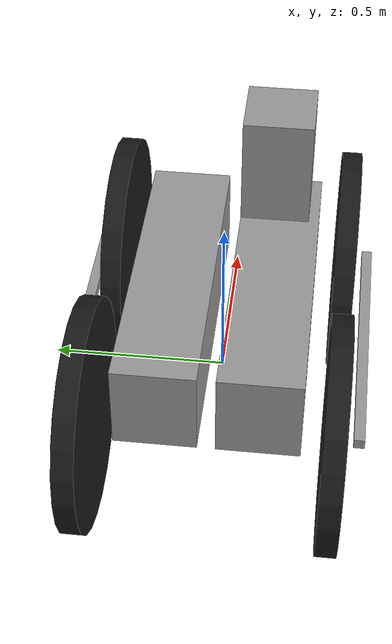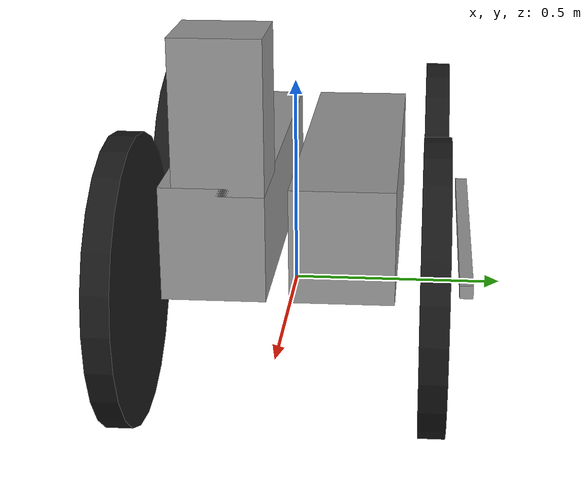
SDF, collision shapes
<?xml version="1.0"?>
<sdf version="1.6">
  <model name="coro_mike_sensor_config_1">
    <pose>0 0 0.1275 0 0 0</pose>
    <enable_wind>1</enable_wind>

    <link name="base_link">
      <inertial>
        <pose>0 -0.14 0.11 0 0 0</pose>
        <mass>27.85</mass>
        <inertia>
          <ixx>0.274</ixx>
          <iyy>1.961</iyy>
          <izz>1.989</izz>
        </inertia>
      </inertial>

      <collision name="chassis_collision">
        <pose>0 -0.14 0.11 0 0 0</pose>
        <geometry>
          <box>
            <size>0.89 0.23 0.255</size>
          </box>
        </geometry>
      </collision>
      <collision name="chassis_collision2">
        <pose>0 -0.41 0 0 0 0</pose>
        <geometry>
          <box>
            <size>0.8 0.03 0.03</size>
          </box>
        </geometry>
      </collision>
      <collision name="tower_collision">
        <pose>0.345 -0.125 0.39 0 0 0</pose>
        <geometry>
          <box>
            <size>0.2 0.2 0.34</size>
          </box>
        </geometry>
      </collision>

      <visual name="chassis_main_visual">
        <pose>0 -0.14 0.11 0 0 0</pose>
        <geometry>
          <box>
            <size>0.89 0.23 0.255</size>
          </box>
        </geometry>
        <material>
          <ambient>0.6 0.6 0.6 1.0</ambient>
          <diffuse>0.6 0.6 0.6 1.0</diffuse>
        </material>
      </visual>

      <visual name="chassis_main_outside_visual1">
        <pose>0 -0.41 0 0 0 0</pose>
        <geometry>
          <box>
            <size>0.8 0.03 0.03</size>
          </box>
        </geometry>
        <material>
          <ambient>0.6 0.6 0.6 1.0</ambient>
          <diffuse>0.6 0.6 0.6 1.0</diffuse>
        </material>
      </visual>
      <visual name="chassis_main_outside_visual2">
        <pose>0 -0.33 0 0 0 0</pose>
        <geometry>
          <box>
            <size>0.06 0.16 0.03</size>
          </box>
        </geometry>
        <material>
          <ambient>0.6 0.6 0.6 1.0</ambient>
          <diffuse>0.6 0.6 0.6 1.0</diffuse>
        </material>
      </visual>

      <visual name="chassis_joint_visual">
        <pose>0 0 0.04 1.5707963267948966 0 0</pose>
        <geometry>
          <cylinder>
            <length>0.05</length>
            <radius>0.05</radius>
          </cylinder>
        </geometry>
        <material>
          <ambient>0.0 0.0 0.0 1.0</ambient>
          <diffuse>0.0 0.0 0.0 1.0</diffuse>
        </material>
      </visual>

      <visual name="plate1_visual">
        <pose>0.345 -0.125 0.54 0 0 0</pose>
        <geometry>
          <box>
            <size>0.2 0.2 0.005</size>
          </box>
        </geometry>
        <material>
          <ambient>0.8 0.8 0.8 1</ambient>
          <diffuse>0.8 0.8 0.8 1</diffuse>
        </material>
      </visual>
      <visual name="plate2_visual">
        <pose>0.345 -0.125 0.43 0 0 0</pose>
        <geometry>
          <box>
            <size>0.2 0.2 0.005</size>
          </box>
        </geometry>
        <material>
          <ambient>0.8 0.8 0.8 1</ambient>
          <diffuse>0.8 0.8 0.8 1</diffuse>
        </material>
      </visual>
      <visual name="plate3_visual_was35_11_29">
        <pose>0.345 -0.125 0.24 0 0 0</pose>
        <geometry>
          <box>
            <size>0.2 0.2 0.005</size>
          </box>
        </geometry>
        <material>
          <ambient>0.8 0.8 0.8 1</ambient>
          <diffuse>0.8 0.8 0.8 1</diffuse>
        </material>
      </visual>

      <visual name="beam1_visual">
        <pose>0.436 -0.034 0.39 0 0 0</pose>
        <geometry>
          <box>
            <size>0.02 0.02 0.3</size>
          </box>
        </geometry>
        <material>
          <ambient>0.8 0.8 0.8 1</ambient>
          <diffuse>0.8 0.8 0.8 1</diffuse>
        </material>
      </visual>
      <visual name="beam2_visual">
        <pose>0.436 -0.216 0.39 0 0 0</pose>
        <geometry>
          <box>
            <size>0.02 0.02 0.3</size>
          </box>
        </geometry>
        <material>
          <ambient>0.8 0.8 0.8 1</ambient>
          <diffuse>0.8 0.8 0.8 1</diffuse>
        </material>
      </visual>
      <visual name="beam3_visual">
        <pose>0.254 -0.034 0.39 0 0 0</pose>
        <geometry>
          <box>
            <size>0.02 0.02 0.3</size>
          </box>
        </geometry>
        <material>
          <ambient>0.8 0.8 0.8 1</ambient>
          <diffuse>0.8 0.8 0.8 1</diffuse>
        </material>
      </visual>
      <visual name="beam4_visual">
        <pose>0.254 -0.216 0.39 0 0 0</pose>
        <geometry>
          <box>
            <size>0.02 0.02 0.3</size>
          </box>
        </geometry>
        <material>
          <ambient>0.8 0.8 0.8 1</ambient>
          <diffuse>0.8 0.8 0.8 1</diffuse>
        </material>
      </visual>

      <visual name="emergency_stop_bottom_visual">
        <pose>0.2 -0.15 0.245 0 0 0</pose>
        <geometry>
          <cylinder>
            <length>0.015</length>
            <radius>0.015</radius>
          </cylinder>
        </geometry>
        <material>
          <ambient>0.7059 0.7059 0.7059 1.0</ambient>
          <diffuse>0.7059 0.7059 0.7059 1.0</diffuse>
        </material>
      </visual>
      <visual name="emergency_stop_top_visual">
        <pose>0.2 -0.15 0.255 0 0 0</pose>
        <geometry>
          <cylinder>
            <length>0.005</length>
            <radius>0.02</radius>
          </cylinder>
        </geometry>
        <material>
          <ambient>1.0 0.0 0.0 1.0</ambient>
          <diffuse>1.0 0.0 0.0 1.0</diffuse>
        </material>
      </visual>

      <visual name="d435i_realsense_camera_visual">
        <pose>0.405 -0.125 0.513 0 0.46 0</pose>
        <geometry>
          <mesh>
            <scale>0.001 0.001 0.001</scale>
            <uri>meshes/realsense_d435.dae</uri>
          </mesh>
        </geometry>
      </visual>

      <visual name="vlp16_visual1">
        <pose>0.345 -0.125 0.432 0 -0 0</pose>
        <geometry>
          <mesh>
            <scale>1 1 1</scale>
            <uri>meshes/VLP16_base_1.dae</uri>
          </mesh>
        </geometry>
      </visual>
      <visual name="vlp_visual2">
        <pose>0.345 -0.125 0.432 0 -0 0</pose>
        <geometry>
          <mesh>
            <scale>1 1 1</scale>
            <uri>meshes/VLP16_base_2.dae</uri>
          </mesh>
        </geometry>
      </visual>
      <visual name="vlp_visual3">
        <pose>0.345 -0.125 0.432 0 -0 0</pose>
        <geometry>
          <mesh>
            <scale>1 1 1</scale>
            <uri>meshes/VLP16_scan.dae</uri>
          </mesh>
        </geometry>
      </visual>

      <visual name="camera_front_visual">
        <pose>0.435 -0.065 0.525 0 0 0</pose>
        <geometry>
          <box>
            <size>0.01 0.03 0.03</size>
          </box>
        </geometry>
        <material>
          <ambient>0.0 0.0 0.0 1.0</ambient>
          <diffuse>0.0 0.0 0.0 1.0</diffuse>
        </material>
      </visual>
      <visual name="camera_lens_front_visual">
        <pose>0.445 -0.065 0.525 0 1.5707963267948966 0</pose>
        <geometry>
          <cylinder>
            <length>0.011</length>
            <radius>0.005</radius>
          </cylinder>
        </geometry>
        <material>
          <ambient>0.0 0.0 0.0 1.0</ambient>
          <diffuse>0.0 0.0 0.0 1.0</diffuse>
        </material>
      </visual>

      <visual name="camera_rear_visual">
        <pose>0.255 -0.125 0.525 0 0 0</pose>
        <geometry>
          <box>
            <size>0.01 0.03 0.03</size>
          </box>
        </geometry>
        <material>
          <ambient>0.0 0.0 0.0 1.0</ambient>
          <diffuse>0.0 0.0 0.0 1.0</diffuse>
        </material>
      </visual>
      <visual name="camera_lens_rear_visual">
        <pose>0.245 -0.125 0.525 0 1.5707963267948966 0</pose>
        <geometry>
          <cylinder>
            <length>0.011</length>
            <radius>0.005</radius>
          </cylinder>
        </geometry>
        <material>
          <ambient>0.0 0.0 0.0 1.0</ambient>
          <diffuse>0.0 0.0 0.0 1.0</diffuse>
        </material>
      </visual>

      <visual name="camera_left_visual">
        <pose>0.345 -0.035 0.525 0 0 0</pose>
        <geometry>
          <box>
            <size>0.03 0.01 0.03</size>
          </box>
        </geometry>
        <material>
          <ambient>0.0 0.0 0.0 1.0</ambient>
          <diffuse>0.0 0.0 0.0 1.0</diffuse>
        </material>
      </visual>
      <visual name="camera_lens_left_visual">
        <pose>0.345 -0.025 0.525 1.5707963267948966 0 0</pose>
        <geometry>
          <cylinder>
            <length>0.011</length>
            <radius>0.005</radius>
          </cylinder>
        </geometry>
        <material>
          <ambient>0.0 0.0 0.0 1.0</ambient>
          <diffuse>0.0 0.0 0.0 1.0</diffuse>
        </material>
      </visual>

      <visual name="camera_right_visual">
        <pose>0.345 -0.215 0.525 0 0 0</pose>
        <geometry>
          <box>
            <size>0.03 0.01 0.03</size>
          </box>
        </geometry>
        <material>
          <ambient>0.0 0.0 0.0 1.0</ambient>
          <diffuse>0.0 0.0 0.0 1.0</diffuse>
        </material>
      </visual>
      <visual name="camera_lens_right_visual">
        <pose>0.345 -0.225 0.525 1.5707963267948966 0 0</pose>
        <geometry>
          <cylinder>
            <length>0.011</length>
            <radius>0.005</radius>
          </cylinder>
        </geometry>
        <material>
          <ambient>0.0 0.0 0.0 1.0</ambient>
          <diffuse>0.0 0.0 0.0 1.0</diffuse>
        </material>
      </visual>

      <visual name="light_front_visual">
        <pose>0.435 -0.125 0.562 0 0 0</pose>
        <geometry>
          <box>
            <size>0.04 0.13 0.04</size>
          </box>
        </geometry>
        <material>
          <ambient>0.0 0.0 0.0 1.0</ambient>
          <diffuse>0.0 0.0 0.0 1.0</diffuse>
        </material>
      </visual>
      <light name="light_front" type="spot">
        <pose>0.465 -0.125 0.562 0 -1.5707963267948966 0</pose>
        <attenuation>
          <range>25</range>
          <linear>0</linear>
          <constant>0.1</constant>
          <quadratic>0.005</quadratic>
        </attenuation>
        <diffuse>0.8 0.8 0.5 1.0</diffuse>
        <specular>0.8 0.8 0.5 1</specular>
        <spot>
          <inner_angle>1.571</inner_angle>
          <outer_angle>2.1</outer_angle>
          <falloff>1</falloff>
        </spot>
        <direction>1 0 0</direction>
        <cast_shadows>1</cast_shadows>
      </light>

      <visual name="light_rear_visual">
        <pose>0.255 -0.125 0.562 0 0 0</pose>
        <geometry>
          <box>
            <size>0.04 0.12 0.04</size>
          </box>
        </geometry>
        <material>
          <ambient>0.0 0.0 0.0 1.0</ambient>
          <diffuse>0.0 0.0 0.0 1.0</diffuse>
        </material>
      </visual>
      <light name="light_rear" type="spot">
        <pose>0.225 -0.125 0.562 0 1.5707963267948966 0</pose>
        <attenuation>
          <range>25</range>
          <linear>0</linear>
          <constant>0.1</constant>
          <quadratic>0.005</quadratic>
        </attenuation>
        <diffuse>0.8 0.8 0.5 1.0</diffuse>
        <specular>0.8 0.8 0.5 1</specular>
        <spot>
          <inner_angle>1.571</inner_angle>
          <outer_angle>2.1</outer_angle>
          <falloff>1</falloff>
        </spot>
        <direction>1 0 0</direction>
        <cast_shadows>1</cast_shadows>
      </light>

      <visual name="light_left_visual">
        <pose>0.345 -0.035 0.562 0 0 0</pose>
        <geometry>
          <box>
            <size>0.12 0.04 0.04</size>
          </box>
        </geometry>
        <material>
          <ambient>0.0 0.0 0.0 1.0</ambient>
          <diffuse>0.0 0.0 0.0 1.0</diffuse>
        </material>
      </visual>
      <light name="light_left" type="spot">
        <pose>0.345 0.025 0.562 1.5707963267948966 0 0</pose>
        <attenuation>
          <range>25</range>
          <linear>0</linear>
          <constant>0.1</constant>
          <quadratic>0.005</quadratic>
        </attenuation>
        <diffuse>0.8 0.8 0.5 1.0</diffuse>
        <specular>0.8 0.8 0.5 1</specular>
        <spot>
          <inner_angle>1.571</inner_angle>
          <outer_angle>2.1</outer_angle>
          <falloff>1</falloff>
        </spot>
        <direction>1 0 0</direction>
        <cast_shadows>1</cast_shadows>
      </light>

      <visual name="light_right_visual">
        <pose>0.345 -0.215 0.562 0 0 0</pose>
        <geometry>
          <box>
            <size>0.12 0.04 0.04</size>
          </box>
        </geometry>
        <material>
          <ambient>0.0 0.0 0.0 1.0</ambient>
          <diffuse>0.0 0.0 0.0 1.0</diffuse>
        </material>
      </visual>
      <light name="light_right" type="spot">
        <pose>0.345 -0.245 0.562 -1.5707963267948966 0 0</pose>
        <attenuation>
          <range>25</range>
          <linear>0</linear>
          <constant>0.1</constant>
          <quadratic>0.005</quadratic>
        </attenuation>
        <diffuse>0.8 0.8 0.5 1.0</diffuse>
        <specular>0.8 0.8 0.5 1</specular>
        <spot>
          <inner_angle>1.571</inner_angle>
          <outer_angle>2.1</outer_angle>
          <falloff>1</falloff>
        </spot>
        <direction>1 0 0</direction>
        <cast_shadows>1</cast_shadows>
      </light>

      <!-- thermal camera -->
      <visual name="thermal_camera_visual">
        <pose> 0.425 -0.185 0.524 0 0 0</pose>
        <geometry>
          <box>
            <size>0.02 0.03 0.03</size>
          </box>
        </geometry>
      </visual>
      <sensor name="thermal_camera" type="thermal">
        <pose> 0.44 -0.17 0.574 0 0 0</pose>
        <camera name="thermal_camera">
          <horizontal_fov>0.628</horizontal_fov>
          <lens>
            <intrinsics>
              <!-- fx = fy = width / ( 2 * tan (hfov / 2 ) ) -->
              <fx>317.173</fx>
              <fy>317.173</fy>
              <!-- cx = ( width - 1 ) / 2 -->
              <cx>102.5</cx>
              <!-- cy = ( height - 1 ) / 2 -->
              <cy>77.5</cy>
              <s>0</s>
            </intrinsics>
          </lens>
          <image>
            <width>206</width>
            <height>156</height>
            <format>L8</format>
          </image>
          <clip>
            <near>0.1</near>
            <far>100</far>
          </clip>
        </camera>
        <always_on>1</always_on>
        <update_rate>9</update_rate>
        <plugin
          filename="ignition-gazebo-thermal-sensor-system"
          name="ignition::gazebo::systems::ThermalSensor">
          <min_temp>253.15</min_temp>
          <max_temp>673.15</max_temp>
          <resolution>1.6</resolution>
        </plugin>
      </sensor>

      <!-- Real robot has 2 x B0203 with LN008 each with a 180 deg hor x 130 deg vert FOV
           Since fisheye cameras are not modeled, four cameras are used in the model -->
      <sensor name="camera_front" type="camera">
        <pose>0.455 -0.065 0.525 0 0 0</pose>
        <always_on>1</always_on>
        <update_rate>25</update_rate>
        <camera name="camera_front">
          <horizontal_fov>1.658</horizontal_fov>
          <lens>
            <intrinsics>
              <!-- fx = fy = width / ( 2 * tan (hfov / 2 ) ) -->
              <fx>329.9</fx>
              <fy>329.9</fy>
              <!-- cx = ( width - 1 ) / 2 -->
              <cx>359.5</cx>
              <!-- cy = ( height - 1 ) / 2 -->
              <cy>539.5</cy>
              <s>0</s>
            </intrinsics>
          </lens>
          <distortion>
            <k1>0.0</k1>
            <k2>0.0</k2>
            <k3>0.0</k3>
            <p1>0.0</p1>
            <p2>0.0</p2>
            <center>0.5 0.5</center>
          </distortion>
          <image>
            <width>720</width>
            <height>1080</height>
            <format>R8G8B8</format>
          </image>
          <clip>
            <near>0.01</near>
            <far>300</far>
          </clip>
          <noise>
            <type>gaussian</type>
            <mean>0</mean>
            <stddev>0.007</stddev>
          </noise>
        </camera>
      </sensor>

      <sensor name="camera_rear" type="camera">
        <pose>0.235 -0.125 0.525 0 0 3.141592653589793</pose>
        <always_on>1</always_on>
        <update_rate>25</update_rate>
        <camera name="camera_front">
          <horizontal_fov>1.658</horizontal_fov>
          <lens>
            <intrinsics>
              <!-- fx = fy = width / ( 2 * tan (hfov / 2 ) ) -->
              <fx>329.9</fx>
              <fy>329.9</fy>
              <!-- cx = ( width - 1 ) / 2 -->
              <cx>359.5</cx>
              <!-- cy = ( height - 1 ) / 2 -->
              <cy>539.5</cy>
              <s>0</s>
            </intrinsics>
          </lens>
          <distortion>
            <k1>0.0</k1>
            <k2>0.0</k2>
            <k3>0.0</k3>
            <p1>0.0</p1>
            <p2>0.0</p2>
            <center>0.5 0.5</center>
          </distortion>
          <image>
            <width>720</width>
            <height>1080</height>
            <format>R8G8B8</format>
          </image>
          <clip>
            <near>0.01</near>
            <far>300</far>
          </clip>
          <noise>
            <type>gaussian</type>
            <mean>0</mean>
            <stddev>0.007</stddev>
          </noise>
        </camera>
      </sensor>

      <sensor name="camera_left" type="camera">
        <pose>0.345 -0.015 0.525 0 0 1.5707963267948966</pose>
        <always_on>1</always_on>
        <update_rate>25</update_rate>
        <camera name="camera_front">
          <horizontal_fov>1.658</horizontal_fov>
          <lens>
            <intrinsics>
              <!-- fx = fy = width / ( 2 * tan (hfov / 2 ) ) -->
              <fx>329.9</fx>
              <fy>329.9</fy>
              <!-- cx = ( width - 1 ) / 2 -->
              <cx>359.5</cx>
              <!-- cy = ( height - 1 ) / 2 -->
              <cy>539.5</cy>
              <s>0</s>
            </intrinsics>
          </lens>
          <distortion>
            <k1>0.0</k1>
            <k2>0.0</k2>
            <k3>0.0</k3>
            <p1>0.0</p1>
            <p2>0.0</p2>
            <center>0.5 0.5</center>
          </distortion>
          <image>
            <width>720</width>
            <height>1080</height>
            <format>R8G8B8</format>
          </image>
          <clip>
            <near>0.01</near>
            <far>300</far>
          </clip>
          <noise>
            <type>gaussian</type>
            <mean>0</mean>
            <stddev>0.007</stddev>
          </noise>
        </camera>
      </sensor>

      <sensor name="camera_right" type="camera">
        <pose>0.345 -0.235 0.525 0 0 -1.5707963267948966</pose>
        <always_on>1</always_on>
        <update_rate>25</update_rate>
        <camera name="camera_front">
          <horizontal_fov>1.658</horizontal_fov>
          <lens>
            <intrinsics>
              <!-- fx = fy = width / ( 2 * tan (hfov / 2 ) ) -->
              <fx>329.9</fx>
              <fy>329.9</fy>
              <!-- cx = ( width - 1 ) / 2 -->
              <cx>359.5</cx>
              <!-- cy = ( height - 1 ) / 2 -->
              <cy>539.5</cy>
              <s>0</s>
            </intrinsics>
          </lens>
          <distortion>
            <k1>0.0</k1>
            <k2>0.0</k2>
            <k3>0.0</k3>
            <p1>0.0</p1>
            <p2>0.0</p2>
            <center>0.5 0.5</center>
          </distortion>
          <image>
            <width>720</width>
            <height>1080</height>
            <format>R8G8B8</format>
          </image>
          <clip>
            <near>0.01</near>
            <far>300</far>
          </clip>
          <noise>
            <type>gaussian</type>
            <mean>0</mean>
            <stddev>0.007</stddev>
          </noise>
        </camera>
      </sensor>

      <sensor name="front_laser" type="gpu_lidar">
        <visualize>0</visualize>
        <update_rate>10</update_rate>
        <lidar>
          <scan>
            <horizontal>
              <samples>1800</samples>
              <resolution>1</resolution>
              <min_angle>-3.1459</min_angle>
              <max_angle>3.1459</max_angle>
            </horizontal>
            <vertical>
              <samples>16</samples>
              <resolution>1</resolution>
              <min_angle>-0.261799</min_angle>
              <max_angle>0.261799</max_angle>
            </vertical>
          </scan>
          <range>
            <min>0.05</min>
            <max>100</max>
            <resolution>0.01</resolution>
          </range>
          <noise>
            <type>gaussian</type>
            <mean>0</mean>
            <stddev>0.01</stddev>
          </noise>
        </lidar>
        <pose frame="">0.345 -0.125 0.47 0 -0 0</pose>
      </sensor>

      <!-- Based on Intel realsense D435 (intrinsics and distortion not modeled)-->
      <sensor name="rgbd_front" type="rgbd_camera">
        <pose>0.435 -0.125 0.513 0 0.46 0</pose>
        <always_on>1</always_on>
        <update_rate>30</update_rate>
        <camera name="rgbd_front">
          <horizontal_fov>1.50098</horizontal_fov>
          <lens>
            <intrinsics>
              <!-- fx = fy = width / ( 2 * tan (hfov / 2 ) ) -->
              <fx>343.159</fx>
              <fy>343.159</fy>
              <!-- cx = ( width - 1 ) / 2 -->
              <cx>319.5</cx>
              <!-- cy = ( height - 1 ) / 2 -->
              <cy>179.5</cy>
              <s>0</s>
            </intrinsics>
          </lens>
          <distortion>
            <k1>0.0</k1>
            <k2>0.0</k2>
            <k3>0.0</k3>
            <p1>0.0</p1>
            <p2>0.0</p2>
            <center>0.5 0.5</center>
          </distortion>
          <image>
            <width>640</width>
            <height>360</height>
            <format>R8G8B8</format>
          </image>
          <clip>
            <near>0.01</near>
            <far>300</far>
          </clip>
          <depth_camera>
            <clip>
              <near>0.1</near>
              <far>10</far>
            </clip>
          </depth_camera>
          <noise>
            <type>gaussian</type>
            <mean>0</mean>
            <stddev>0.007</stddev>
          </noise>
        </camera>
      </sensor>

      <!-- MS-IMU3025 -->
      <sensor name="imu_sensor" type="imu">
        <pose>0 -0.125 0 0 0 0</pose>
        <always_on>1</always_on>
        <update_rate>50</update_rate>
        <imu>
          <enable_orientation>0</enable_orientation>
          <angular_velocity>
            <x>
              <noise type="gaussian">
                <mean>0</mean>
                <stddev>0.009</stddev>
                <bias_mean>0.00075</bias_mean>
                <bias_stddev>0.005</bias_stddev>
                <dynamic_bias_stddev>0.00002</dynamic_bias_stddev>
                <dynamic_bias_correlation_time>400.0</dynamic_bias_correlation_time>
                <precision>0.00025</precision>
              </noise>
            </x>
            <y>
              <noise type="gaussian">
                <mean>0</mean>
                <stddev>0.009</stddev>
                <bias_mean>0.00075</bias_mean>
                <bias_stddev>0.005</bias_stddev>
                <dynamic_bias_stddev>0.00002</dynamic_bias_stddev>
                <dynamic_bias_correlation_time>400.0</dynamic_bias_correlation_time>
                <precision>0.00025</precision>
              </noise>
            </y>
            <z>
              <noise type="gaussian">
                <mean>0</mean>
                <stddev>0.009</stddev>
                <bias_mean>0.00075</bias_mean>
                <bias_stddev>0.005</bias_stddev>
                <dynamic_bias_stddev>0.00002</dynamic_bias_stddev>
                <dynamic_bias_correlation_time>400.0</dynamic_bias_correlation_time>
                <precision>0.00025</precision>
              </noise>
            </z>
          </angular_velocity>
          <linear_acceleration>
            <x>
              <noise type="gaussian">
                <mean>0</mean>
                <stddev>0.021</stddev>
                <bias_mean>0.05</bias_mean>
                <bias_stddev>0.0075</bias_stddev>
                <dynamic_bias_stddev>0.000375</dynamic_bias_stddev>
                <dynamic_bias_correlation_time>175.0</dynamic_bias_correlation_time>
                <precision>0.005</precision>
              </noise>
            </x>
            <y>
              <noise type="gaussian">
                <mean>0</mean>
                <stddev>0.021</stddev>
                <bias_mean>0.05</bias_mean>
                <bias_stddev>0.0075</bias_stddev>
                <dynamic_bias_stddev>0.000375</dynamic_bias_stddev>
                <dynamic_bias_correlation_time>175.0</dynamic_bias_correlation_time>
                <precision>0.005</precision>
              </noise>
            </y>
            <z>
              <noise type="gaussian">
                <mean>0</mean>
                <stddev>0.021</stddev>
                <bias_mean>0.05</bias_mean>
                <bias_stddev>0.0075</bias_stddev>
                <dynamic_bias_stddev>0.000375</dynamic_bias_stddev>
                <dynamic_bias_correlation_time>175.0</dynamic_bias_correlation_time>
                <precision>0.005</precision>
              </noise>
            </z>
          </linear_acceleration>
        </imu>
      </sensor>
      <sensor name="air_pressure" type="air_pressure">
        <always_on>1</always_on>
        <update_rate>20</update_rate>
        <air_pressure>
          <reference_altitude>0</reference_altitude>
          <noise type="gaussian">
            <mean>0.00000008</mean>
          </noise>
        </air_pressure>
      </sensor>
      <sensor name="magnetometer" type="magnetometer">
        <always_on>1</always_on>
        <update_rate>50</update_rate>
        <magnetometer>
          <x>
            <noise type="gaussian">
              <mean>0.000000080</mean>
              <bias_mean>0.000000400</bias_mean>
            </noise>
          </x>
          <y>
            <noise type="gaussian">
              <mean>0.000000080</mean>
              <bias_mean>0.000000400</bias_mean>
            </noise>
          </y>
          <z>
            <noise type="gaussian">
              <mean>0.000000080</mean>
              <bias_mean>0.000000400</bias_mean>
            </noise>
          </z>
        </magnetometer>
      </sensor>
    </link>

    <link name="body_left">
      <inertial>
        <pose>0 0.14 0.11 0 0 0</pose>
        <mass>27.85</mass>
        <inertia>
          <ixx>0.274</ixx>
          <iyy>1.961</iyy>
          <izz>1.989</izz>
        </inertia>
      </inertial>

      <collision name="body_left_collision">
        <pose>0 0.14 0.11 0 0 0</pose>
        <geometry>
          <box>
            <size>0.89 0.23 0.255</size>
          </box>
        </geometry>
      </collision>
      <collision name="chassis_left_collision2">
        <pose>0 0.41 0 0 0 0</pose>
        <geometry>
          <box>
            <size>0.8 0.03 0.03</size>
          </box>
        </geometry>
      </collision>

      <visual name="chassis_left_visual">
        <pose>0 0.14 0.11 0 0 0</pose>
        <geometry>
          <box>
            <size>0.89 0.23 0.255</size>
          </box>
        </geometry>
        <material>
          <ambient>0.6 0.6 0.6 1.0</ambient>
          <diffuse>0.6 0.6 0.6 1.0</diffuse>
        </material>
      </visual>
      <visual name="chassis_left_outside_visual1">
        <pose>0 0.41 0 0 0 0</pose>
        <geometry>
          <box>
            <size>0.8 0.03 0.03</size>
          </box>
        </geometry>
        <material>
          <ambient>0.6 0.6 0.6 1.0</ambient>
          <diffuse>0.6 0.6 0.6 1.0</diffuse>
        </material>
      </visual>
      <visual name="chassis_left_outside_visual2">
        <pose>0 0.33 0 0 0 0</pose>
        <geometry>
          <box>
            <size>0.06 0.16 0.03</size>
          </box>
        </geometry>
        <material>
          <ambient>0.6 0.6 0.6 1.0</ambient>
          <diffuse>0.6 0.6 0.6 1.0</diffuse>
        </material>
      </visual>

    </link>

    <link name="front_left_wheel">
      <pose>0.375 0.34 0 0 0 0</pose>
      <inertial>
        <mass>5.0</mass>
        <inertia>
          <ixx>0.030</ixx>
          <iyy>0.056</iyy>
          <izz>0.030</izz>
        </inertia>
      </inertial>
      <collision name="front_left_wheel_collision">
        <pose>0 0 0 -1.5707963267948966 0 0</pose>
        <geometry>
          <cylinder>
            <length>0.06</length>
            <radius>0.33</radius>
          </cylinder>
        </geometry>
        <surface>
          <friction>
            <ode>
              <mu>0.5</mu>
              <mu2>1</mu2>
              <slip1>0.0016</slip1>
              <slip2>0</slip2>
              <fdir1>0 0 1</fdir1>
            </ode>
          </friction>
        </surface>
      </collision>
      <visual name="front_left_wheel_visual">
        <pose>0 0 0 1.5707963267948966 0 0</pose>
        <geometry>
          <mesh>
            <uri>meshes/wheel_left.dae</uri>
            <scale>3.25 3.25 1.3</scale>
          </mesh>
        </geometry>
      </visual>
      <visual name="front_left_axle">
        <pose>0 -0.02 0 -1.5707963267948966 0 0</pose>
        <geometry>
          <cylinder>
            <length>0.16</length>
            <radius>0.01</radius>
          </cylinder>
        </geometry>
        <material>
          <ambient>0.1 0.1 0.1 1.0</ambient>
          <diffuse>0.1 0.1 0.1 1.0</diffuse>
        </material>
      </visual>
    </link>

    <link name="front_right_wheel">
      <pose>0.375 -0.34 0 0 0 0</pose>
      <inertial>
        <mass>5</mass>
        <inertia>
          <ixx>0.030</ixx>
          <iyy>0.056</iyy>
          <izz>0.030</izz>
        </inertia>
      </inertial>
      <collision name="front_right_wheel_collision">
        <pose>0 0 0 1.5707963267948966 0 0</pose>
        <geometry>
          <cylinder>
            <length>0.06</length>
            <radius>0.33</radius>
          </cylinder>
        </geometry>
        <surface>
          <friction>
            <ode>
              <mu>0.5</mu>
              <mu2>1</mu2>
              <slip1>0.0016</slip1>
              <slip2>0</slip2>
              <fdir1>0 0 1</fdir1>
            </ode>
          </friction>
        </surface>
      </collision>
      <visual name="front_right_wheel_visual">
        <pose>0 0 0 1.5707963267948966 0 0</pose>
        <geometry>
          <mesh>
            <uri>meshes/wheel_right.dae</uri>
            <scale>3.25 3.25 1.3</scale>
          </mesh>
        </geometry>
      </visual>
      <visual name="front_right_axle">
        <pose>0 0.02 0 -1.5707963267948966 0 0</pose>
        <geometry>
          <cylinder>
            <length>0.16</length>
            <radius>0.01</radius>
          </cylinder>
        </geometry>
        <material>
          <ambient>0.1 0.1 0.1 1.0</ambient>
          <diffuse>0.1 0.1 0.1 1.0</diffuse>
        </material>
      </visual>
    </link>

    <link name="rear_left_wheel">
      <pose>-0.375 0.34 0 0 0 0</pose>
      <inertial>
        <mass>5</mass>
        <inertia>
          <ixx>0.030</ixx>
          <iyy>0.056</iyy>
          <izz>0.030</izz>
        </inertia>
      </inertial>
      <collision name="rear_left_wheel_collision">
        <pose>0 0 0 -1.5707963267948966 0 0</pose>
        <geometry>
          <cylinder>
            <length>0.06</length>
            <radius>0.33</radius>
          </cylinder>
        </geometry>
        <surface>
          <friction>
            <ode>
              <mu>0.5</mu>
              <mu2>1</mu2>
              <slip1>0.0016</slip1>
              <slip2>0</slip2>
              <fdir1>0 0 1</fdir1>
            </ode>
          </friction>
        </surface>
      </collision>
      <visual name="rear_left_wheel_visual">
        <pose>0 0 0 1.5707963267948966 0 0</pose>
        <geometry>
          <mesh>
            <uri>meshes/wheel_left.dae</uri>
            <scale>3.25 3.25 1.3</scale>
          </mesh>
        </geometry>
      </visual>
      <visual name="rear_left_axle">
        <pose>0 -0.02 0 -1.5707963267948966 0 0</pose>
        <geometry>
          <cylinder>
            <length>0.16</length>
            <radius>0.01</radius>
          </cylinder>
        </geometry>
        <material>
          <ambient>0.1 0.1 0.1 1.0</ambient>
          <diffuse>0.1 0.1 0.1 1.0</diffuse>
        </material>
      </visual>
    </link>

    <link name="rear_right_wheel">
      <pose>-0.375 -0.34 0 0 0 0</pose>
      <inertial>
        <mass>5</mass>
        <inertia>
          <ixx>0.030</ixx>
          <iyy>0.056</iyy>
          <izz>0.030</izz>
        </inertia>
      </inertial>
      <collision name="rear_right_wheel_collision">
        <pose>0 0 0 1.5707963267948966 0 0</pose>
        <geometry>
          <cylinder>
            <length>0.06</length>
            <radius>0.33</radius>
          </cylinder>
        </geometry>
        <surface>
          <friction>
            <ode>
              <mu>0.5</mu>
              <mu2>1</mu2>
              <slip1>0.0016</slip1>
              <slip2>0</slip2>
              <fdir1>0 0 1</fdir1>
            </ode>
          </friction>
        </surface>
      </collision>
      <visual name="rear_right_wheel_visual">
        <pose>0 0 0 1.5707963267948966 0 0</pose>
        <geometry>
          <mesh>
            <uri>meshes/wheel_right.dae</uri>
            <scale>3.25 3.25 1.3</scale>
          </mesh>
        </geometry>
      </visual>
      <visual name="front_right_axle">
        <pose>0 0.02 0 -1.5707963267948966 0 0</pose>
        <geometry>
          <cylinder>
            <length>0.16</length>
            <radius>0.01</radius>
          </cylinder>
        </geometry>
        <material>
          <ambient>0.1 0.1 0.1 1.0</ambient>
          <diffuse>0.1 0.1 0.1 1.0</diffuse>
        </material>
      </visual>
    </link>

    <joint name="Center Pivot" type="revolute">
      <child>body_left</child>
      <parent>base_link</parent>
      <axis>
        <xyz>0 -1 0</xyz>
        <limit>
          <lower>-0.5585</lower>
          <upper>0.5585</upper>
          <effort>30</effort>
          <velocity>1</velocity>
        </limit>
        <dynamics>
          <spring_reference>0</spring_reference>
          <spring_stiffness>0</spring_stiffness>
        </dynamics>
        <use_parent_model_frame>0</use_parent_model_frame>
      </axis>
    </joint>

    <joint name="front_left_wheel_joint" type="revolute">
      <child>front_left_wheel</child>
      <parent>body_left</parent>
      <axis>
        <xyz>0 1 0</xyz>
        <limit>
          <lower>-1.79769e+308</lower>
          <upper>+1.79769e+308</upper>
          <velocity>14</velocity>
          <!-- Torque in NM. -->
          <effort>60</effort>
        </limit>
        <use_parent_model_frame>1</use_parent_model_frame>
      </axis>
    </joint>

    <joint name="rear_left_wheel_joint" type="revolute">
      <parent>body_left</parent>
      <child>rear_left_wheel</child>
      <axis>
        <xyz>0 1 0</xyz>
        <limit>
          <lower>-1.79769e+308</lower>
          <upper>+1.79769e+308</upper>
          <velocity>14</velocity>
          <effort>60</effort>
        </limit>
      </axis>
    </joint>

    <joint name="rear_right_wheel_joint" type="revolute">
      <parent>base_link</parent>
      <child>rear_right_wheel</child>
      <axis>
        <xyz>0 1 0</xyz>
        <limit>
          <lower>-1.79769e+308</lower>
          <upper>+1.79769e+308</upper>
          <velocity>14</velocity>
          <!-- Torque in NM. -->
          <effort>60</effort>
        </limit>
      </axis>
    </joint>

    <joint name="front_right_wheel_joint" type="revolute">
      <parent>base_link</parent>
      <child>front_right_wheel</child>
      <axis>
        <xyz>0 1 0</xyz>
        <limit>
          <lower>-1.79769e+308</lower>
          <upper>+1.79769e+308</upper>
          <velocity>14</velocity>
          <!-- Torque in NM. -->
          <effort>60</effort>
        </limit>
      </axis>
    </joint>
  </model>
</sdf>
